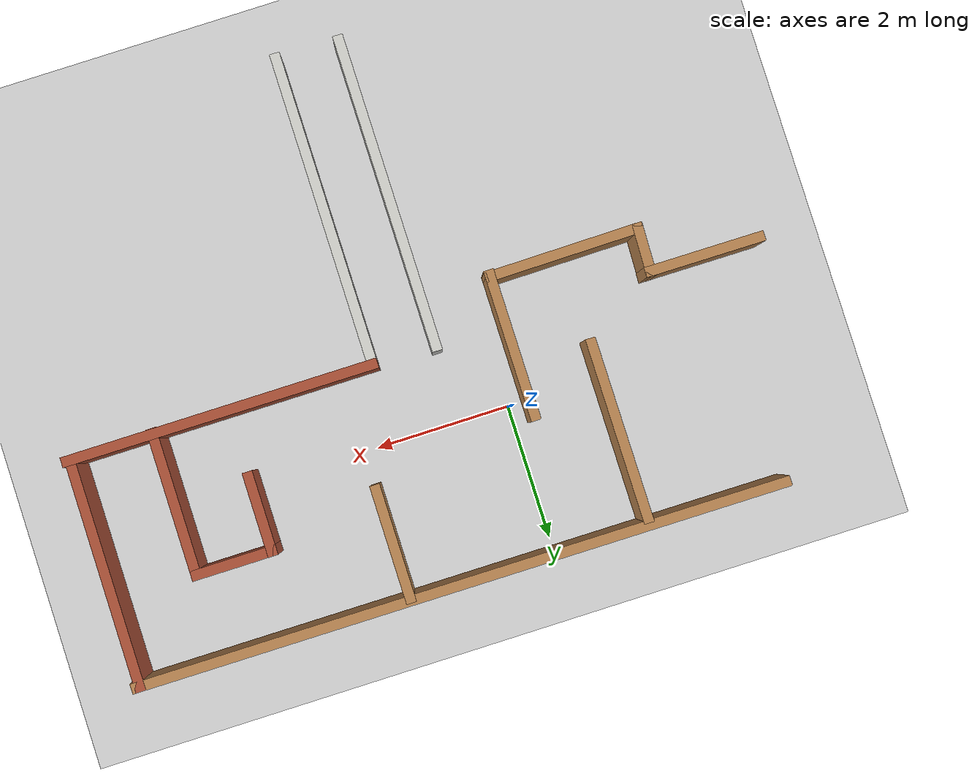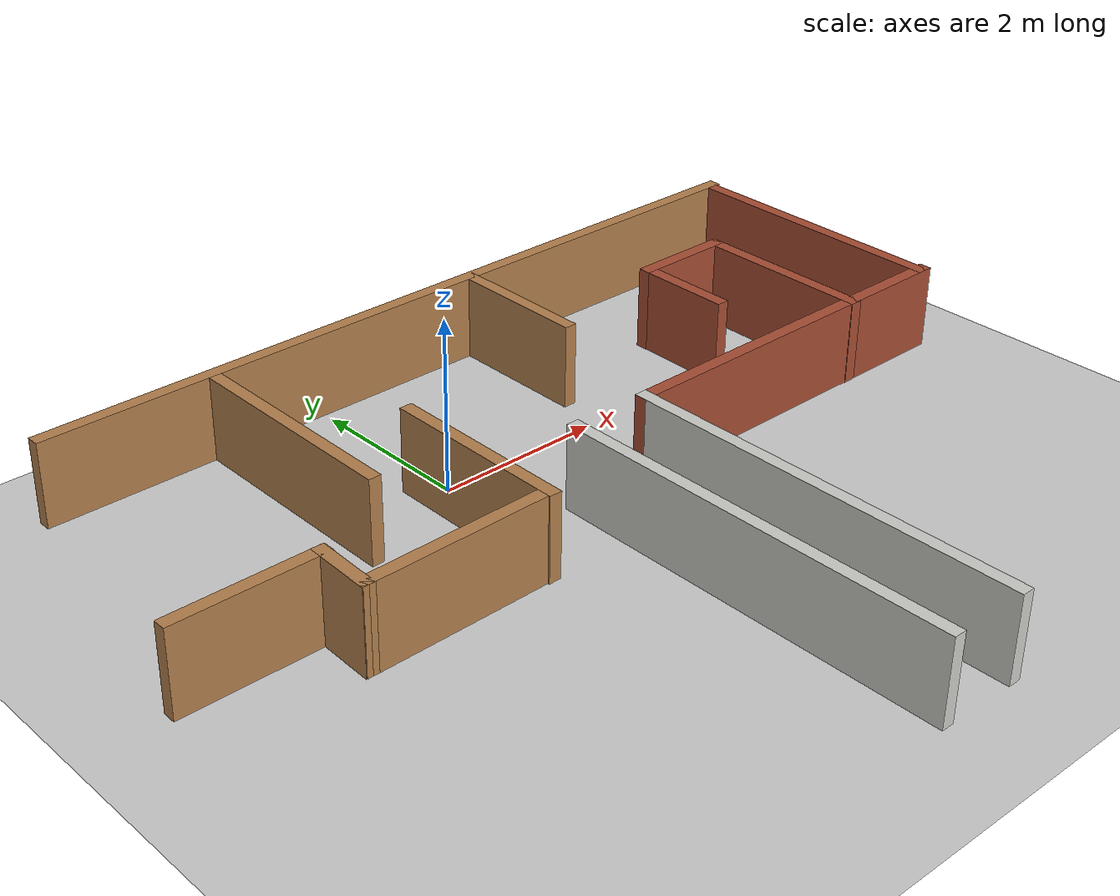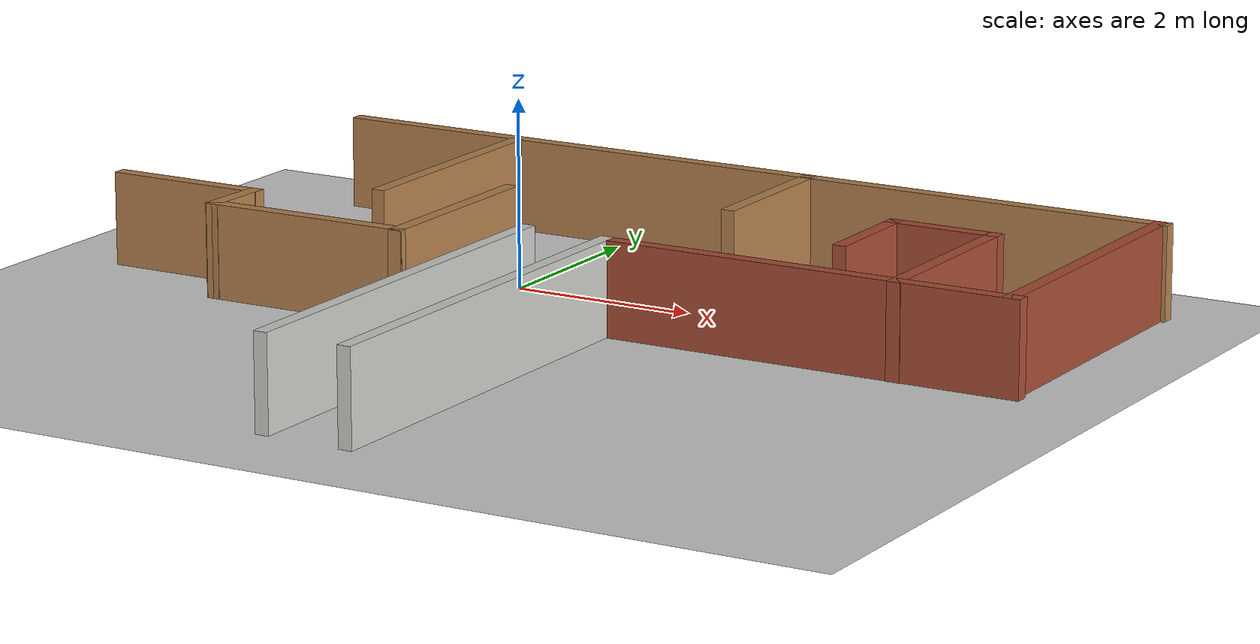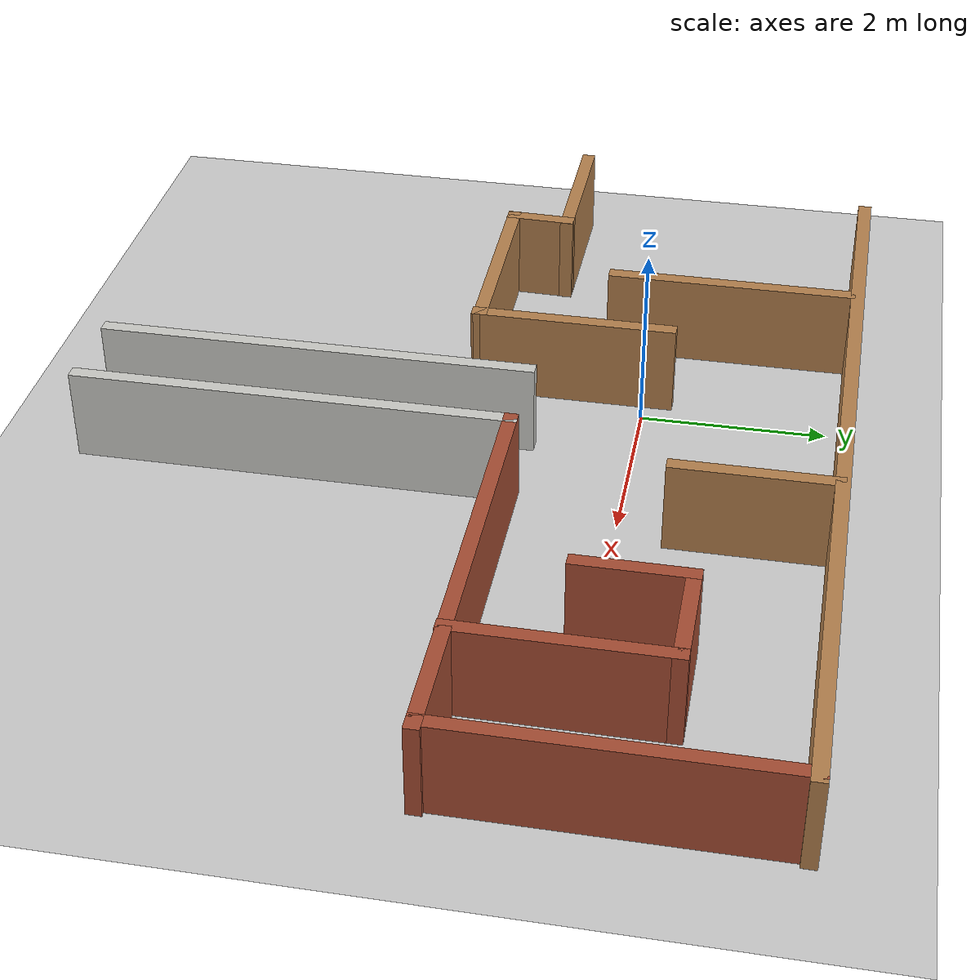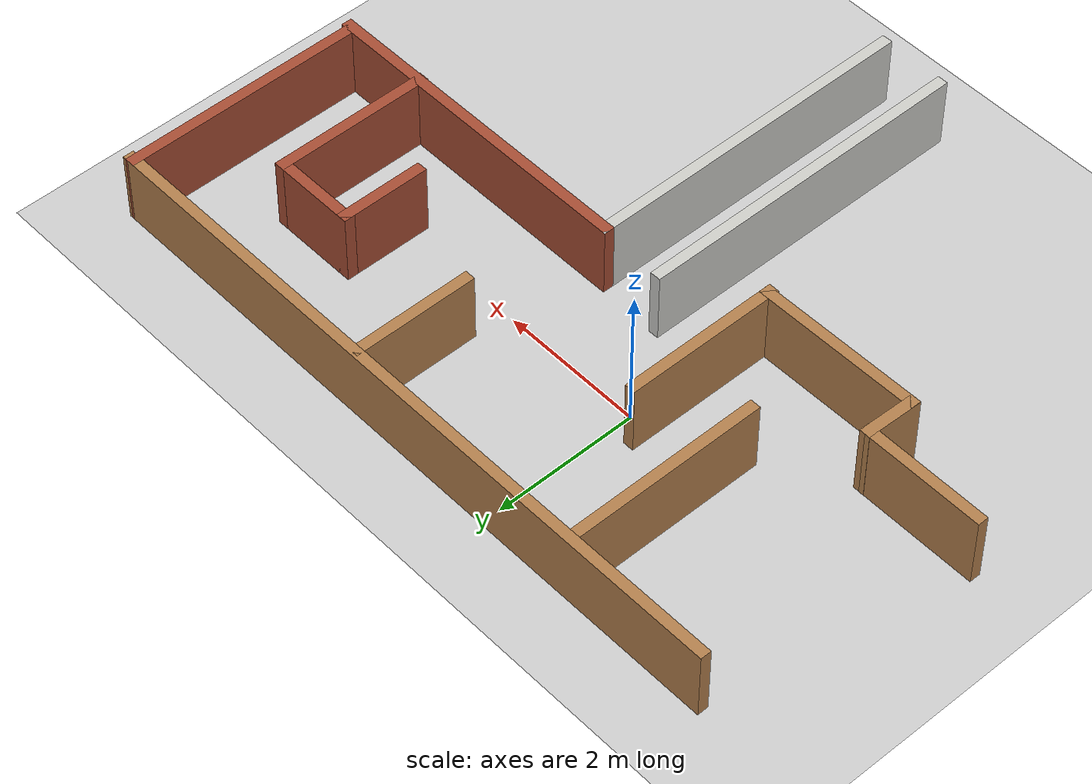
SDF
<sdf version="1.4">
  <world name="default">

    <scene>
      <ambient>0.4 0.4 0.4 1</ambient>
      <background>0.7 0.7 0.7 1</background>
      <shadows>true</shadows>
    </scene>

    <!-- A global light source -->
    <include>
      <uri>model://sun</uri>
    </include>

    <!-- A ground plane -->
    <include>
      <uri>model://ground_plane</uri>
    </include>

    <!-- My maze -->
    <include>
      <uri>model://my_maze</uri>
    </include>

    <physics type="ode">
      <real_time_update_rate>1000.0</real_time_update_rate>
      <max_step_size>0.001</max_step_size>
      <real_time_factor>1</real_time_factor>
      <ode>
        <solver>
          <type>quick</type>
          <iters>150</iters>
          <precon_iters>0</precon_iters>
          <sor>1.400000</sor>
          <use_dynamic_moi_rescaling>1</use_dynamic_moi_rescaling>
        </solver>
        <constraints>
          <cfm>0.00001</cfm>
          <erp>0.2</erp>
          <contact_max_correcting_vel>2000.000000</contact_max_correcting_vel>
          <contact_surface_layer>0.01000</contact_surface_layer>
        </constraints>
      </ode>
    </physics>
  </world>

</sdf>

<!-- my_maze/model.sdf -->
<sdf version='1.6'>
  <model name='my_maze'>
    <pose frame=''>1.06993 -1.7749 0 0 -0 0</pose>
    <link name='Wall_11'>
      <collision name='Wall_11_Collision'>
        <geometry>
          <box>
            <size>1.75 0.15 1</size>
          </box>
        </geometry>
        <pose frame=''>0 0 0.5 0 -0 0</pose>
      </collision>
      <visual name='Wall_11_Visual'>
        <pose frame=''>0 0 0.5 0 -0 0</pose>
        <geometry>
          <box>
            <size>1.75 0.15 1</size>
          </box>
        </geometry>
        <material>
          <script>
            <uri>file://media/materials/scripts/gazebo.material</uri>
            <name>Gazebo/Wood</name>
          </script>
          <ambient>1 1 1 1</ambient>
        </material>
      </visual>
      <pose frame=''>1.1172 3.1339 0 0 0 -1.5708</pose>
    </link>
    <link name='Wall_13'>
      <collision name='Wall_13_Collision'>
        <geometry>
          <box>
            <size>2.25 0.15 1</size>
          </box>
        </geometry>
        <pose frame=''>0 0 0.5 0 -0 0</pose>
      </collision>
      <visual name='Wall_13_Visual'>
        <pose frame=''>0 0 0.5 0 -0 0</pose>
        <geometry>
          <box>
            <size>2.25 0.15 1</size>
          </box>
        </geometry>
        <material>
          <script>
            <uri>file://media/materials/scripts/gazebo.material</uri>
            <name>Gazebo/Wood</name>
          </script>
          <ambient>1 1 1 1</ambient>
        </material>
      </visual>
      <pose frame=''>-1.35151 0.957952 0 0 0 -1.5708</pose>
    </link>
    <link name='Wall_14'>
      <collision name='Wall_14_Collision'>
        <geometry>
          <box>
            <size>2.36382 0.15 1</size>
          </box>
        </geometry>
        <pose frame=''>0 0 0.5 0 -0 0</pose>
      </collision>
      <visual name='Wall_14_Visual'>
        <pose frame=''>0 0 0.5 0 -0 0</pose>
        <geometry>
          <box>
            <size>2.36382 0.15 1</size>
          </box>
        </geometry>
        <material>
          <script>
            <uri>file://media/materials/scripts/gazebo.material</uri>
            <name>Gazebo/Wood</name>
          </script>
          <ambient>0.921569 0.807843 0.615686 1</ambient>
        </material>
      </visual>
      <pose frame=''>-2.45837 -0.082919 0 0 0 -3.13177</pose>
    </link>
    <link name='Wall_15'>
      <collision name='Wall_15_Collision'>
        <geometry>
          <box>
            <size>0.790312 0.15 1</size>
          </box>
        </geometry>
        <pose frame=''>0 0 0.5 0 -0 0</pose>
      </collision>
      <visual name='Wall_15_Visual'>
        <pose frame=''>0 0 0.5 0 -0 0</pose>
        <geometry>
          <box>
            <size>0.790312 0.15 1</size>
          </box>
        </geometry>
        <material>
          <script>
            <uri>file://media/materials/scripts/gazebo.material</uri>
            <name>Gazebo/Wood</name>
          </script>
          <ambient>1 1 1 1</ambient>
        </material>
      </visual>
      <pose frame=''>-3.56091 0.226211 0 0 -0 1.53956</pose>
    </link>
    <link name='Wall_16'>
      <collision name='Wall_16_Collision'>
        <geometry>
          <box>
            <size>1.78671 0.15 1</size>
          </box>
        </geometry>
        <pose frame=''>0 0 0.5 0 -0 0</pose>
      </collision>
      <visual name='Wall_16_Visual'>
        <pose frame=''>0 0 0.5 0 -0 0</pose>
        <geometry>
          <box>
            <size>1.78671 0.15 1</size>
          </box>
        </geometry>
        <material>
          <script>
            <uri>file://media/materials/scripts/gazebo.material</uri>
            <name>Gazebo/Wood</name>
          </script>
          <ambient>1 1 1 1</ambient>
        </material>
      </visual>
      <pose frame=''>-4.36357 0.549054 0 0 -0 3.13812</pose>
    </link>
    <link name='Wall_18'>
      <collision name='Wall_18_Collision'>
        <geometry>
          <box>
            <size>4.705 0.15 1</size>
          </box>
        </geometry>
        <pose frame=''>0 0 0.5 0 -0 0</pose>
      </collision>
      <visual name='Wall_18_Visual'>
        <pose frame=''>0 0 0.5 0 -0 0</pose>
        <geometry>
          <box>
            <size>4.705 0.15 1</size>
          </box>
        </geometry>
        <material>
          <script>
            <uri>file://media/materials/scripts/gazebo.material</uri>
            <name>Gazebo/Bricks</name>
          </script>
          <ambient>1 1 1 1</ambient>
        </material>
      </visual>
      <pose frame=''>2.90457 0.617897 0 0 -0 3.14159</pose>
    </link>
    <link name='Wall_2'>
      <collision name='Wall_2_Collision'>
        <geometry>
          <box>
            <size>9.79195 0.15 1</size>
          </box>
        </geometry>
        <pose frame=''>0 0 0.5 0 -0 0</pose>
      </collision>
      <visual name='Wall_2_Visual'>
        <pose frame=''>0 0 0.5 0 -0 0</pose>
        <geometry>
          <box>
            <size>9.79195 0.15 1</size>
          </box>
        </geometry>
        <material>
          <script>
            <uri>file://media/materials/scripts/gazebo.material</uri>
            <name>Gazebo/Wood</name>
          </script>
          <ambient>1 1 1 1</ambient>
        </material>
      </visual>
      <pose frame=''>0.361106 3.97494 0 0 -0 3.14013</pose>
    </link>
    <link name='Wall_21'>
      <collision name='Wall_21_Collision'>
        <geometry>
          <box>
            <size>2.25 0.15 1</size>
          </box>
        </geometry>
        <pose frame=''>0 0 0.5 0 -0 0</pose>
      </collision>
      <visual name='Wall_21_Visual'>
        <pose frame=''>0 0 0.5 0 -0 0</pose>
        <geometry>
          <box>
            <size>2.25 0.15 1</size>
          </box>
        </geometry>
        <material>
          <script>
            <uri>file://media/materials/scripts/gazebo.material</uri>
            <name>Gazebo/Bricks</name>
          </script>
          <ambient>1 1 1 1</ambient>
        </material>
      </visual>
      <pose frame=''>3.90607 1.6599 0 0 -0 1.5708</pose>
    </link>
    <link name='Wall_22'>
      <collision name='Wall_22_Collision'>
        <geometry>
          <box>
            <size>1.27033 0.15 1</size>
          </box>
        </geometry>
        <pose frame=''>0 0 0.5 0 -0 0</pose>
      </collision>
      <visual name='Wall_22_Visual'>
        <pose frame=''>0 0 0.5 0 -0 0</pose>
        <geometry>
          <box>
            <size>1.27033 0.15 1</size>
          </box>
        </geometry>
        <material>
          <script>
            <uri>file://media/materials/scripts/gazebo.material</uri>
            <name>Gazebo/Bricks</name>
          </script>
          <ambient>1 1 1 1</ambient>
        </material>
      </visual>
      <pose frame=''>3.34607 2.7099 0 0 -0 3.14159</pose>
    </link>
    <link name='Wall_23'>
      <collision name='Wall_23_Collision'>
        <geometry>
          <box>
            <size>1.25 0.15 1</size>
          </box>
        </geometry>
        <pose frame=''>0 0 0.5 0 -0 0</pose>
      </collision>
      <visual name='Wall_23_Visual'>
        <pose frame=''>0 0 0.5 0 -0 0</pose>
        <geometry>
          <box>
            <size>1.25 0.15 1</size>
          </box>
        </geometry>
        <material>
          <script>
            <uri>file://media/materials/scripts/gazebo.material</uri>
            <name>Gazebo/Bricks</name>
          </script>
          <ambient>1 1 1 1</ambient>
        </material>
      </visual>
      <pose frame=''>2.78607 2.1599 0 0 0 -1.5708</pose>
    </link>
    <link name='Wall_26'>
      <collision name='Wall_26_Collision'>
        <geometry>
          <box>
            <size>4.75 0.15 1</size>
          </box>
        </geometry>
        <pose frame=''>0 0 0.5 0 -0 0</pose>
      </collision>
      <visual name='Wall_26_Visual'>
        <pose frame=''>0 0 0.5 0 -0 0</pose>
        <geometry>
          <box>
            <size>4.75 0.15 1</size>
          </box>
        </geometry>
        <material>
          <script>
            <uri>file://media/materials/scripts/gazebo.material</uri>
            <name>Gazebo/CeilingTiled</name>
          </script>
          <ambient>1 1 1 1</ambient>
        </material>
      </visual>
      <pose frame=''>0.627075 -1.6821 0 0 0 -1.5708</pose>
    </link>
    <link name='Wall_28'>
      <collision name='Wall_28_Collision'>
        <geometry>
          <box>
            <size>4.75 0.15 1</size>
          </box>
        </geometry>
        <pose frame=''>0 0 0.5 0 -0 0</pose>
      </collision>
      <visual name='Wall_28_Visual'>
        <pose frame=''>0 0 0.5 0 -0 0</pose>
        <geometry>
          <box>
            <size>4.75 0.15 1</size>
          </box>
        </geometry>
        <material>
          <script>
            <uri>file://media/materials/scripts/gazebo.material</uri>
            <name>Gazebo/CeilingTiled</name>
          </script>
          <ambient>1 1 1 1</ambient>
        </material>
      </visual>
      <pose frame=''>-0.312925 -1.6611 0 0 0 -1.5708</pose>
    </link>
    <link name='Wall_6'>
      <collision name='Wall_6_Collision'>
        <geometry>
          <box>
            <size>3.5 0.15 1</size>
          </box>
        </geometry>
        <pose frame=''>0 0 0.5 0 -0 0</pose>
      </collision>
      <visual name='Wall_6_Visual'>
        <pose frame=''>0 0 0.5 0 -0 0</pose>
        <geometry>
          <box>
            <size>3.5 0.15 1</size>
          </box>
        </geometry>
        <material>
          <script>
            <uri>file://media/materials/scripts/gazebo.material</uri>
            <name>Gazebo/Bricks</name>
          </script>
          <ambient>1 1 1 1</ambient>
        </material>
      </visual>
      <pose frame=''>5.13607 2.2929 0 0 0 -1.5708</pose>
    </link>
    <link name='Wall_9'>
      <collision name='Wall_9_Collision'>
        <geometry>
          <box>
            <size>2.75 0.15 1</size>
          </box>
        </geometry>
        <pose frame=''>0 0 0.5 0 -0 0</pose>
      </collision>
      <visual name='Wall_9_Visual'>
        <pose frame=''>0 0 0.5 0 -0 0</pose>
        <geometry>
          <box>
            <size>2.75 0.15 1</size>
          </box>
        </geometry>
        <material>
          <script>
            <uri>file://media/materials/scripts/gazebo.material</uri>
            <name>Gazebo/Wood</name>
          </script>
          <ambient>1 1 1 1</ambient>
        </material>
      </visual>
      <pose frame=''>-2.43693 2.5739 0 0 0 -1.5708</pose>
    </link>
    <static>1</static>
  </model>
</sdf>
